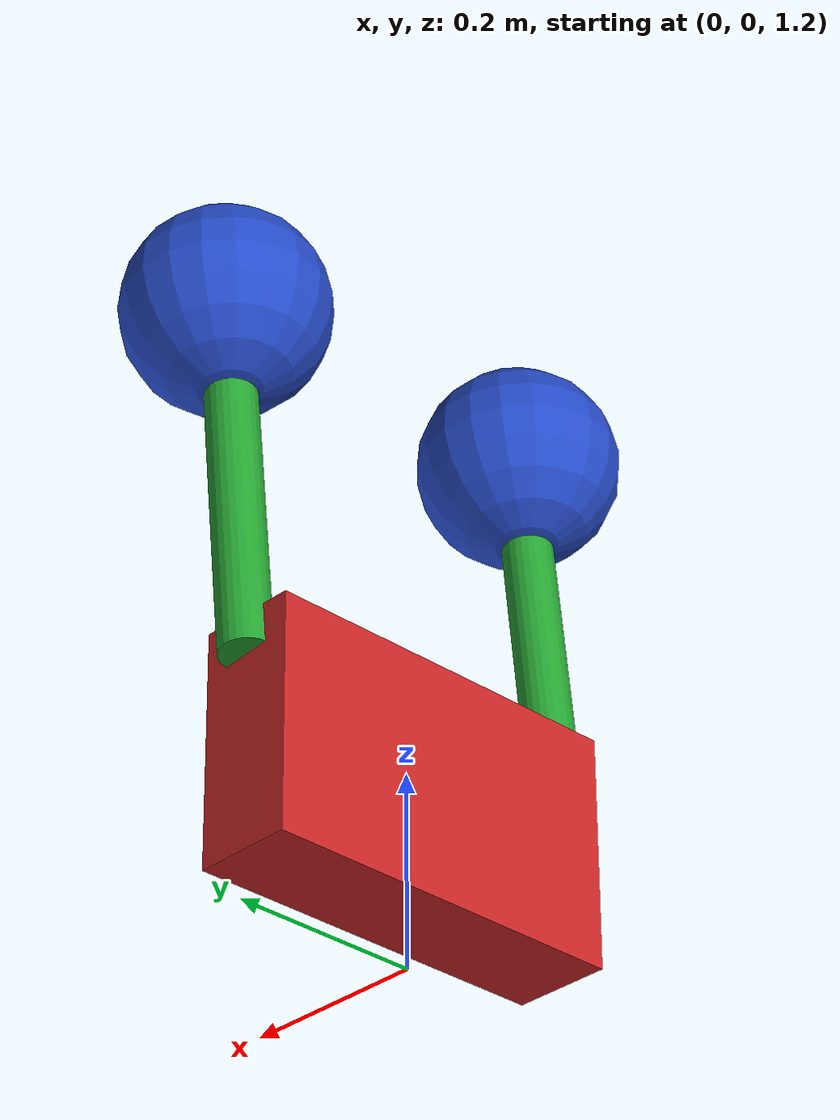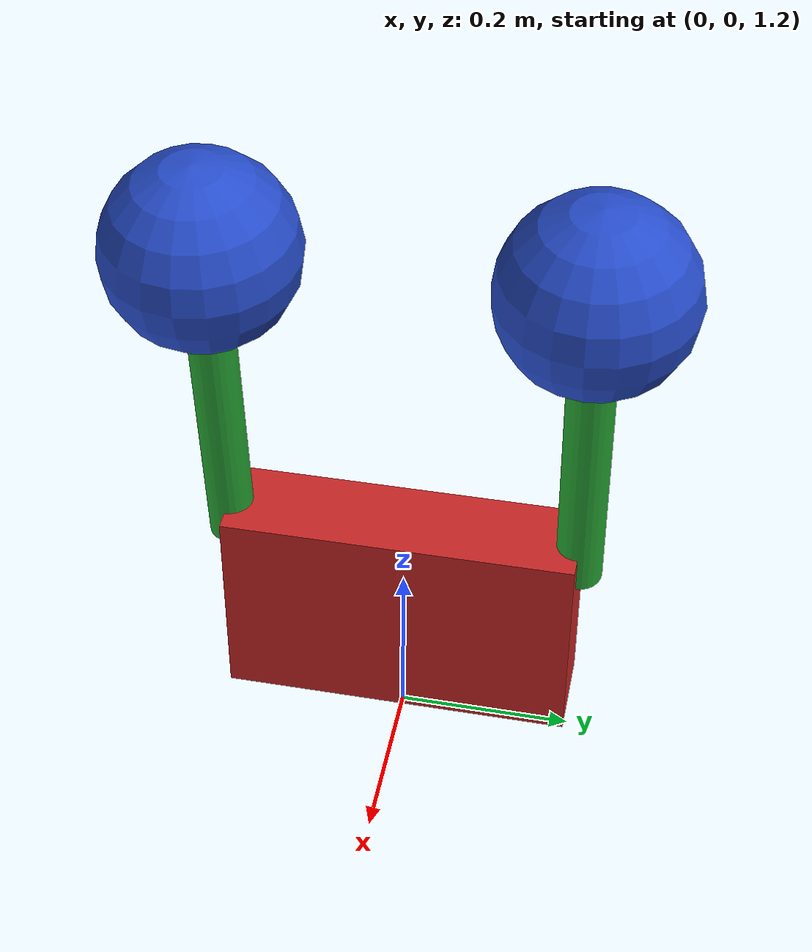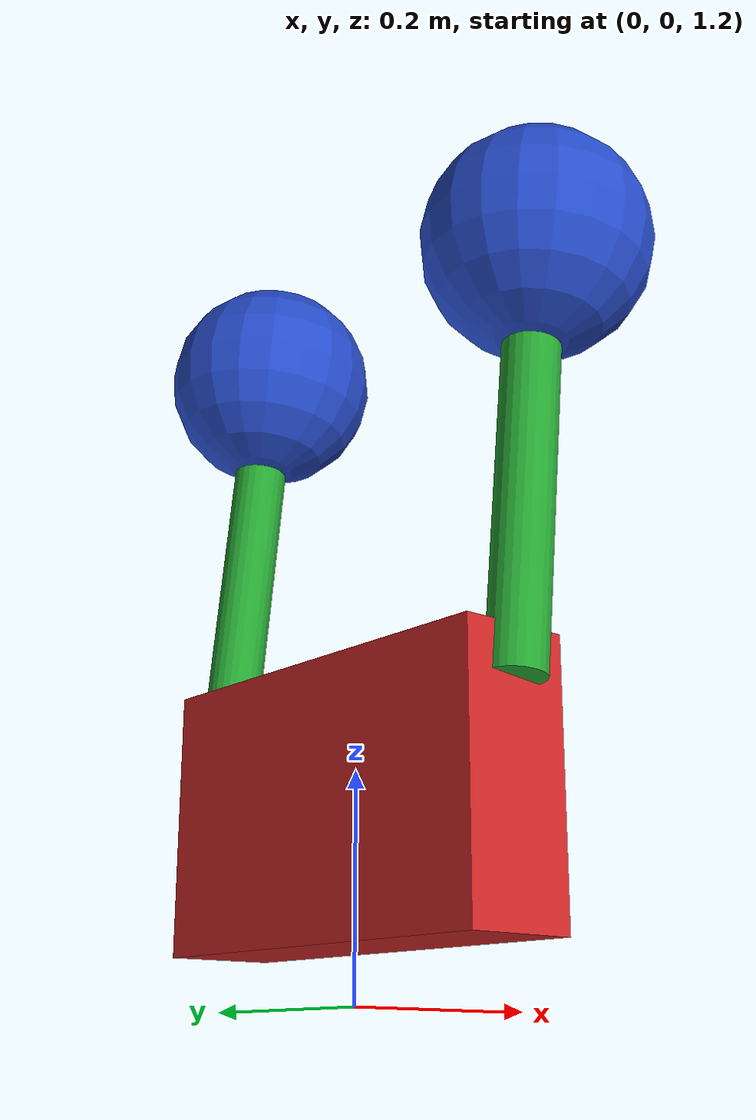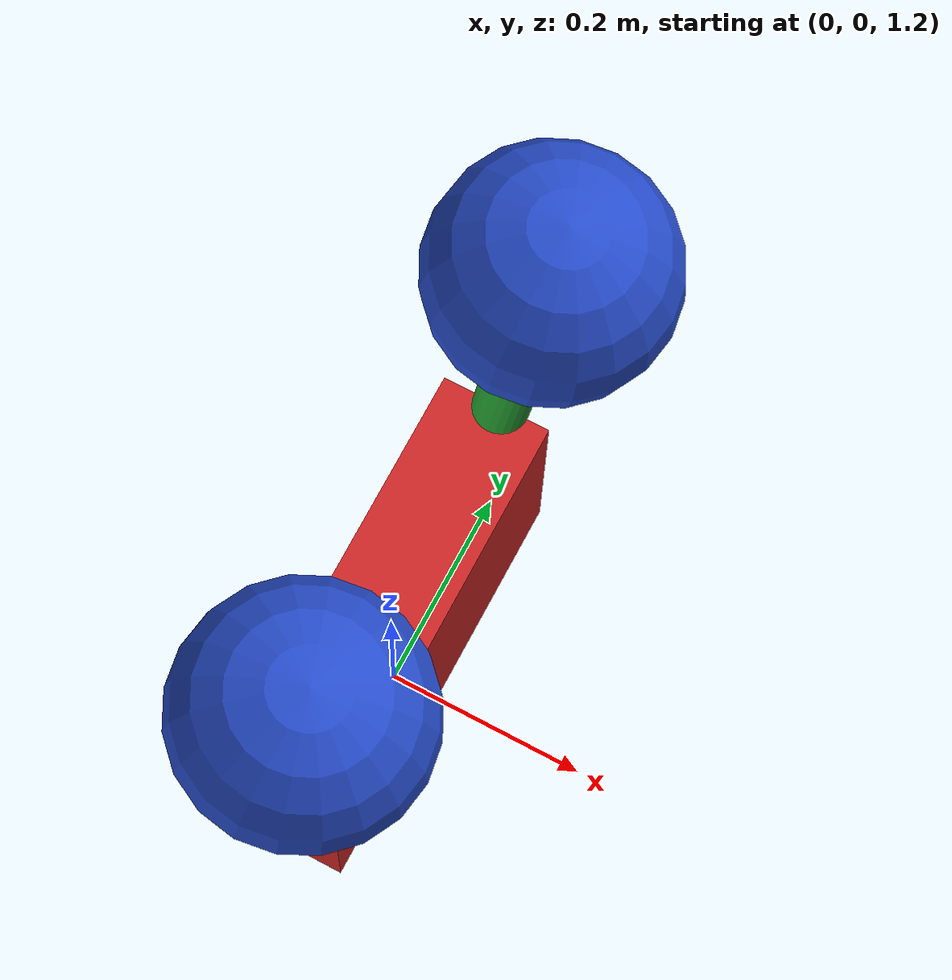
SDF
<sdf version='1.6'>
  <model name='contact_robot'>
    <link name='torso'>
      <pose frame=''>0 0 1.248 0 -0 0</pose>
      <inertial>
        <pose frame=''>0 0 0.122 0 -0 0</pose>
        <mass>43.32</mass>
        <inertia>
          <ixx>0.792525</ixx>
          <ixy>0</ixy>
          <ixz>0</ixz>
          <iyy>0.255105</iyy>
          <iyz>0</iyz>
          <izz>0.255105</izz>
        </inertia>
      </inertial>
      <collision name='torso_collision'>
        <pose frame=''>0 0 0.122 0 -0 0</pose>
        <geometry>
          <box>
            <size>0.1055 0.4 0.244</size>
          </box>
        </geometry>
        <surface>
          <contact>
            <ode>
              <kp>100000</kp>
              <kd>1e+06</kd>
            </ode>
          </contact>
          <friction>
            <ode>
              <mu>0.01</mu>
              <mu2>0.01</mu2>
            </ode>
          </friction>
        </surface>
      </collision>
      <visual name='torso_visual'>
        <pose frame=''>0 0 0.122 0 -0 0</pose>
        <geometry>
          <box>
            <size>0.1055 0.4 0.244</size>
          </box>
        </geometry>
        <material>
          <script>
            <name>Gazebo/Red</name>
            <uri>file://media/materials/scripts/gazebo.material</uri>
          </script>
        </material>
      </visual>
      <gravity>1</gravity>
      <velocity_decay/>
    </link>
    <joint name='torso_joint' type='fixed'>
      <child>torso</child>
      <parent>world</parent>
    </joint>
    <link name='left_upper_arm'>
      <pose frame=''>0 0.2 1.448 0 0.1 0</pose>
      <inertial>
        <pose frame=''>0 0 0.19375 0 -0 0</pose>
        <mass>3.12</mass>
        <inertia>
          <ixx>0.0510381</ixx>
          <ixy>0</ixy>
          <ixz>0</ixz>
          <iyy>0.0510381</iyy>
          <iyz>0</iyz>
          <izz>0.00321942</izz>
        </inertia>
      </inertial>
      <collision name='left_upper_arm_collision'>
        <pose frame=''>0 0 0.151 0 -0 0</pose>
        <geometry>
          <cylinder>
            <length>0.302</length>
            <radius>0.026375</radius>
          </cylinder>
        </geometry>
        <surface>
          <contact>
            <ode>
              <kp>1e+07</kp>
              <kd>1e+07</kd>
              <max_vel>1</max_vel>
              <min_depth>0.001</min_depth>
            </ode>
          </contact>
          <friction>
            <ode>
              <mu>1</mu>
              <mu2>1</mu2>
            </ode>
          </friction>
        </surface>
      </collision>
      <collision name='left_upper_arm_fixed_joint_lump__left_bump_sensor_collision_collision_1'>
        <pose frame=''>0 0 0.4075 0 -0 0</pose>
        <geometry>
          <sphere>
            <radius>0.1055</radius>
          </sphere>
        </geometry>
      </collision>
      <visual name='left_upper_arm_visual'>
        <pose frame=''>0 0 0.151 0 -0 0</pose>
        <geometry>
          <cylinder>
            <length>0.302</length>
            <radius>0.026375</radius>
          </cylinder>
        </geometry>
        <material>
          <script>
            <name>Gazebo/Green</name>
            <uri>file://media/materials/scripts/gazebo.material</uri>
          </script>
        </material>
      </visual>
      <visual name='left_upper_arm_fixed_joint_lump__left_arm_fist_visual_1'>
        <pose frame=''>0 0 0.4075 0 -0 0</pose>
        <geometry>
          <sphere>
            <radius>0.1055</radius>
          </sphere>
        </geometry>
        <material>
          <script>
            <name>Gazebo/Blue</name>
            <uri>file://media/materials/scripts/gazebo.material</uri>
          </script>
        </material>
      </visual>
      <velocity_decay/>
      <velocity_decay/>
      <gravity>1</gravity>
      <velocity_decay/>
      <sensor name='lowerleg_contactsensor_sensor' type='contact'>
        <always_on>1</always_on>
        <contact>
          <collision>left_upper_arm_fixed_joint_lump__left_bump_sensor_collision_collision_1</collision>
          <topic>__default_topic__</topic>
        </contact>
        <plugin name='left_arm_fist_plugin' filename='libgazebo_ros_bumper.so'>
          <bumperTopicName>left_arm_fist_contact</bumperTopicName>
          <frameName>left_arm_fist</frameName>
        </plugin>
        <pose frame=''>0 0 0.4075 0 -0 0</pose>
      </sensor>
    </link>
    <joint name='left_upper_arm_hinge' type='revolute'>
      <child>left_upper_arm</child>
      <parent>torso</parent>
      <axis>
        <xyz>0 1 0</xyz>
        <limit>
          <lower>-1e+16</lower>
          <upper>1e+16</upper>
        </limit>
        <dynamics>
          <damping>0</damping>
          <friction>0.1</friction>
          <spring_reference>0</spring_reference>
          <spring_stiffness>0</spring_stiffness>
        </dynamics>
        <use_parent_model_frame>1</use_parent_model_frame>
      </axis>
    </joint>
    <link name='right_upper_arm'>
      <pose frame=''>0 -0.2 1.448 0 0.1 0</pose>
      <inertial>
        <pose frame=''>0 0 0.19375 0 -0 0</pose>
        <mass>3.12</mass>
        <inertia>
          <ixx>0.0510381</ixx>
          <ixy>0</ixy>
          <ixz>0</ixz>
          <iyy>0.0510381</iyy>
          <iyz>0</iyz>
          <izz>0.00321942</izz>
        </inertia>
      </inertial>
      <collision name='right_upper_arm_collision'>
        <pose frame=''>0 0 0.151 0 -0 0</pose>
        <geometry>
          <cylinder>
            <length>0.302</length>
            <radius>0.026375</radius>
          </cylinder>
        </geometry>
        <surface>
          <contact>
            <ode>
              <kp>1e+07</kp>
              <kd>1e+07</kd>
              <max_vel>1</max_vel>
              <min_depth>0.001</min_depth>
            </ode>
          </contact>
          <friction>
            <ode>
              <mu>1</mu>
              <mu2>1</mu2>
            </ode>
          </friction>
        </surface>
      </collision>
      <collision name='right_upper_arm_fixed_joint_lump__right_bump_sensor_collision_collision_1'>
        <pose frame=''>0 0 0.4075 0 -0 0</pose>
        <geometry>
          <sphere>
            <radius>0.1055</radius>
          </sphere>
        </geometry>
      </collision>
      <visual name='right_upper_arm_visual'>
        <pose frame=''>0 0 0.151 0 -0 0</pose>
        <geometry>
          <cylinder>
            <length>0.302</length>
            <radius>0.026375</radius>
          </cylinder>
        </geometry>
        <material>
          <script>
            <name>Gazebo/Green</name>
            <uri>file://media/materials/scripts/gazebo.material</uri>
          </script>
        </material>
      </visual>
      <visual name='right_upper_arm_fixed_joint_lump__right_arm_fist_visual_1'>
        <pose frame=''>0 0 0.4075 0 -0 0</pose>
        <geometry>
          <sphere>
            <radius>0.1055</radius>
          </sphere>
        </geometry>
        <material>
          <script>
            <name>Gazebo/Blue</name>
            <uri>file://media/materials/scripts/gazebo.material</uri>
          </script>
        </material>
      </visual>
      <velocity_decay/>
      <velocity_decay/>
      <gravity>1</gravity>
      <velocity_decay/>
      <sensor name='lowerleg_contactsensor_sensor' type='contact'>
        <always_on>1</always_on>
        <contact>
          <collision>right_upper_arm_fixed_joint_lump__right_bump_sensor_collision_collision_1</collision>
          <topic>__default_topic__</topic>
        </contact>
        <plugin name='right_arm_fist_plugin' filename='libgazebo_ros_bumper.so'>
          <bumperTopicName>right_arm_fist_contact</bumperTopicName>
          <frameName>right_arm_fist</frameName>
        </plugin>
        <pose frame=''>0 0 0.4075 0 -0 0</pose>
      </sensor>
    </link>
    <joint name='right_upper_arm_hinge' type='revolute'>
      <child>right_upper_arm</child>
      <parent>torso</parent>
      <axis>
        <xyz>0 1 0</xyz>
        <limit>
          <lower>-1e+16</lower>
          <upper>1e+16</upper>
        </limit>
        <dynamics>
          <damping>0</damping>
          <friction>0.1</friction>
          <spring_reference>0</spring_reference>
          <spring_stiffness>0</spring_stiffness>
        </dynamics>
        <use_parent_model_frame>1</use_parent_model_frame>
      </axis>
    </joint>
  </model>
</sdf>
